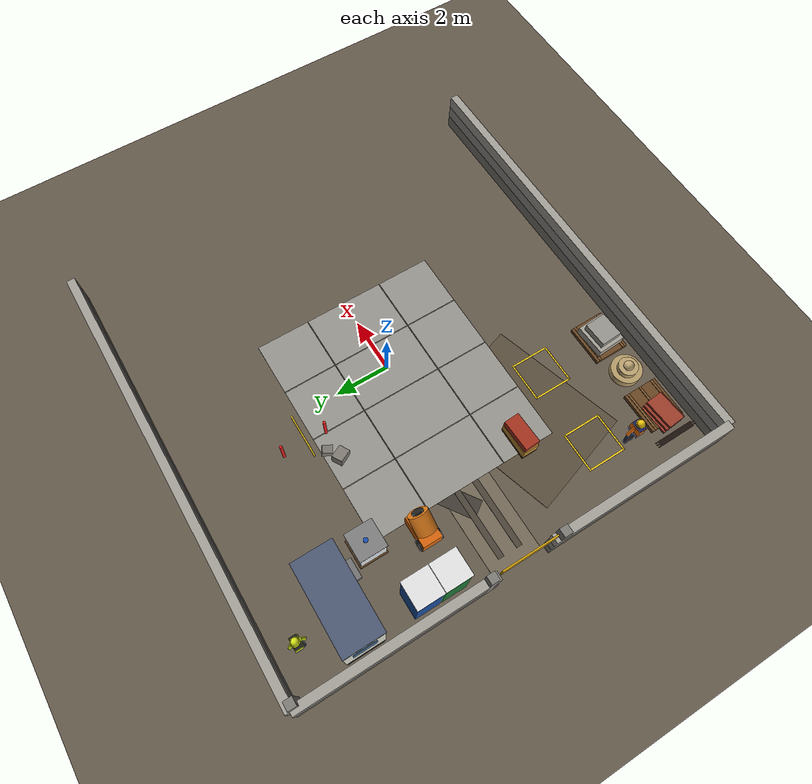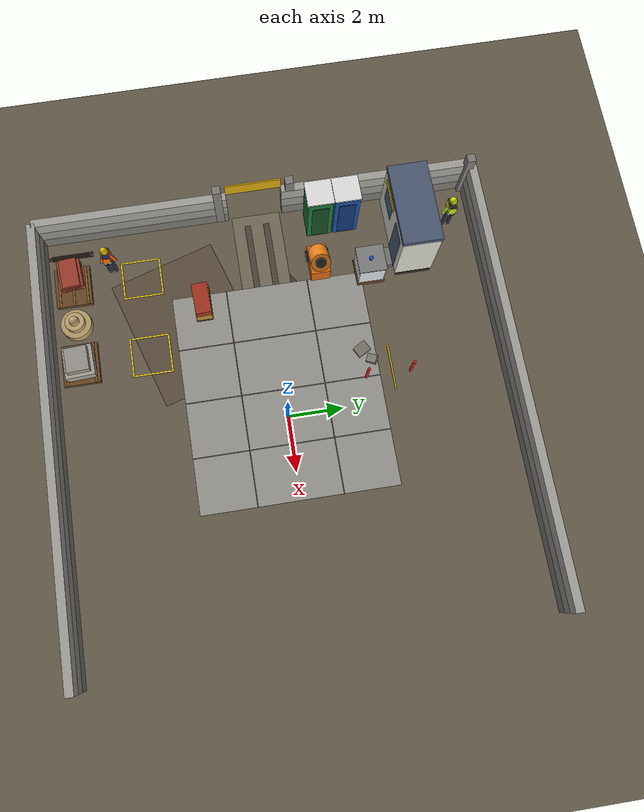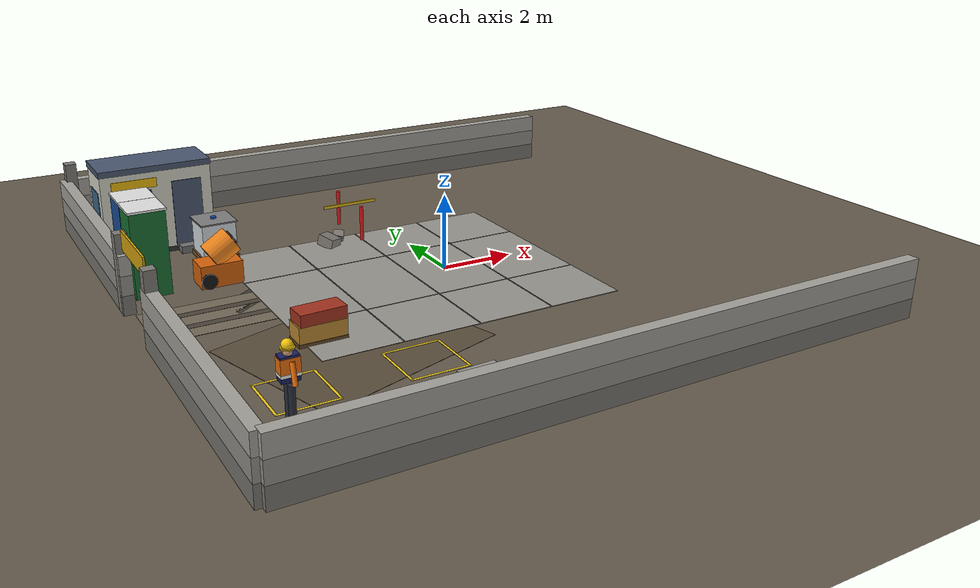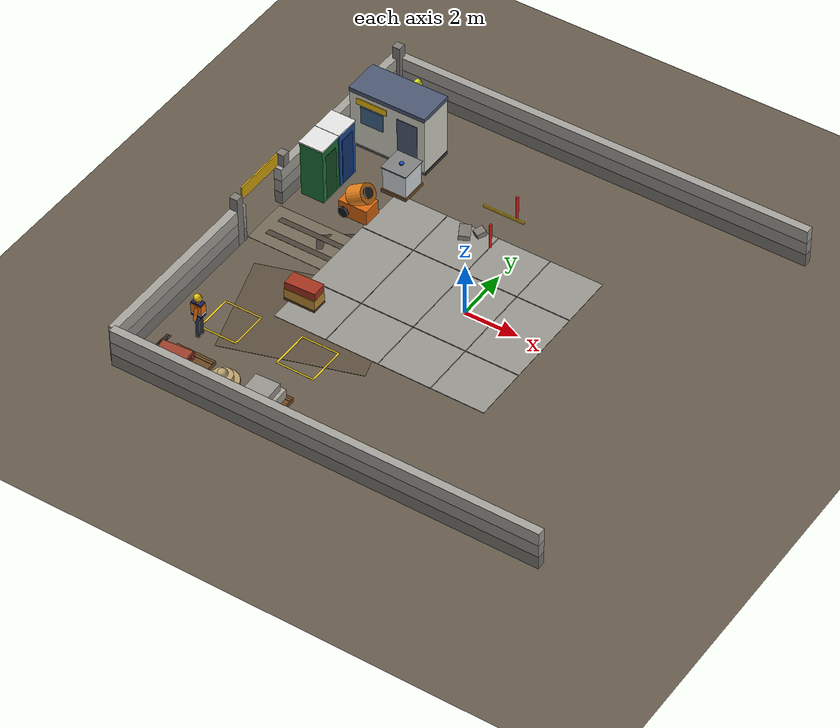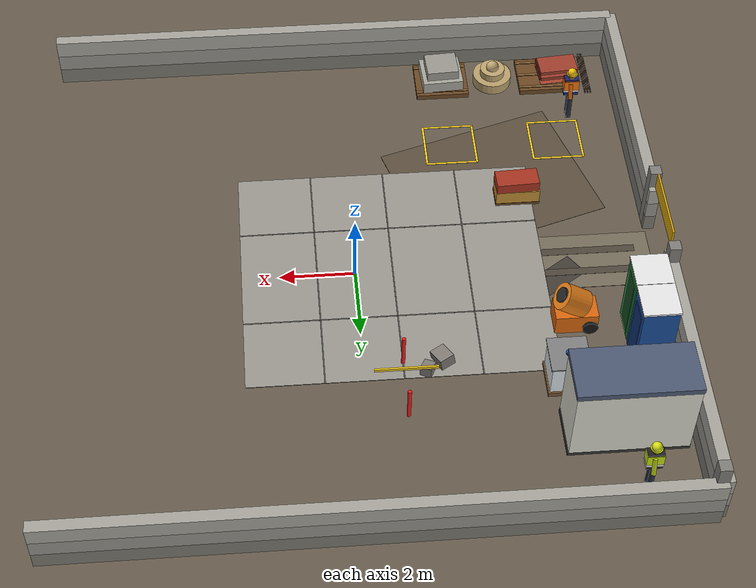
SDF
<sdf version="1.8">
 <world name="masonassist_world">
  <model name="ground_plane">
   <static>true</static>
   <link name="link">
    <collision name="collision">
     <geometry><plane><normal>0 0 1</normal><size>100 100</size></plane></geometry>
     <surface><friction><ode><mu>1.0</mu><mu2>1.0</mu2></ode></friction></surface>
    </collision>
    <visual name="visual">
     <geometry><plane><normal>0 0 1</normal><size>100 100</size></plane></geometry>
     <material><ambient>0.4 0.36 0.3 1</ambient><diffuse>0.4 0.36 0.3 1</diffuse></material>
    </visual>
   </link>
  </model>
  <model name="soil_patch_1">
   <static>true</static>
   <pose>-4 -3 0.005 0 0 0.3</pose>
   <link name="link">
    <visual name="visual">
     <geometry><box><size>5 4 0.01</size></box></geometry>
     <material><ambient>0.36 0.31 0.24 1</ambient><diffuse>0.36 0.31 0.24 1</diffuse></material>
    </visual>
   </link>
  </model>
  <model name="entrance_path">
   <static>true</static>
   <pose>-6.2 0 0.005 0 0 0</pose>
   <link name="link">
    <visual name="visual">
     <geometry><box><size>3.4 1.8 0.01</size></box></geometry>
     <material><ambient>0.46 0.42 0.35 1</ambient><diffuse>0.46 0.42 0.35 1</diffuse></material>
    </visual>
   </link>
  </model>
  <model name="stain_patch_gate">
   <static>true</static>
   <pose>-5.3 0.5 0.006 0 0 0.6</pose>
   <link name="link">
    <visual name="visual">
     <geometry><box><size>1.4 0.7 0.008</size></box></geometry>
     <material><ambient>0.26 0.24 0.21 1</ambient><diffuse>0.26 0.24 0.21 1</diffuse></material>
    </visual>
   </link>
  </model>
  <model name="concrete_slab">
   <static>true</static>
   <pose>-1 0 0.012 0 0 0</pose>
   <link name="link">
    <visual name="visual">
     <geometry><box><size>8 7 0.02</size></box></geometry>
     <material><ambient>0.6 0.59 0.56 1</ambient><diffuse>0.6 0.59 0.56 1</diffuse></material>
    </visual>
   </link>
  </model>
  <model name="slab_seams">
   <static>true</static>
   <pose>-1 0 0.0225 0 0 0</pose>
   <link name="link">
    <visual name="v1">
     <pose>-2 0 0 0 0 0</pose>
     <geometry><box><size>0.03 7 0.004</size></box></geometry>
     <material><ambient>0.38 0.37 0.35 1</ambient><diffuse>0.38 0.37 0.35 1</diffuse></material>
    </visual>
    <visual name="v2">
     <geometry><box><size>0.03 7 0.004</size></box></geometry>
     <material><ambient>0.38 0.37 0.35 1</ambient><diffuse>0.38 0.37 0.35 1</diffuse></material>
    </visual>
    <visual name="v3">
     <pose>2 0 0 0 0 0</pose>
     <geometry><box><size>0.03 7 0.004</size></box></geometry>
     <material><ambient>0.38 0.37 0.35 1</ambient><diffuse>0.38 0.37 0.35 1</diffuse></material>
    </visual>
    <visual name="h1">
     <pose>0 -1.5 0 0 0 0</pose>
     <geometry><box><size>8 0.03 0.004</size></box></geometry>
     <material><ambient>0.38 0.37 0.35 1</ambient><diffuse>0.38 0.37 0.35 1</diffuse></material>
    </visual>
    <visual name="h2">
     <pose>0 1.5 0 0 0 0</pose>
     <geometry><box><size>8 0.03 0.004</size></box></geometry>
     <material><ambient>0.38 0.37 0.35 1</ambient><diffuse>0.38 0.37 0.35 1</diffuse></material>
    </visual>
   </link>
  </model>
  <model name="wall_north">
   <static>true</static>
   <pose>0 8 0.75 0 0 0</pose>
   <link name="link">
    <collision name="collision"><geometry><box><size>16 0.3 1.5</size></box></geometry></collision>
    <visual name="base">
     <pose>0 0 -0.5 0 0 0</pose>
     <geometry><box><size>16 0.3 0.5</size></box></geometry>
     <material><ambient>0.48 0.47 0.44 1</ambient><diffuse>0.48 0.47 0.44 1</diffuse></material>
    </visual>
    <visual name="mid">
     <geometry><box><size>16 0.3 0.5</size></box></geometry>
     <material><ambient>0.58 0.57 0.55 1</ambient><diffuse>0.58 0.57 0.55 1</diffuse></material>
    </visual>
    <visual name="top">
     <pose>0 0 0.5 0 0 0</pose>
     <geometry><box><size>16 0.3 0.5</size></box></geometry>
     <material><ambient>0.65 0.64 0.61 1</ambient><diffuse>0.65 0.64 0.61 1</diffuse></material>
    </visual>
   </link>
  </model>
  <model name="wall_south">
   <static>true</static>
   <pose>0 -8 0.75 0 0 0</pose>
   <link name="link">
    <collision name="collision"><geometry><box><size>16 0.3 1.5</size></box></geometry></collision>
    <visual name="base">
     <pose>0 0 -0.5 0 0 0</pose>
     <geometry><box><size>16 0.3 0.5</size></box></geometry>
     <material><ambient>0.48 0.47 0.44 1</ambient><diffuse>0.48 0.47 0.44 1</diffuse></material>
    </visual>
    <visual name="mid">
     <geometry><box><size>16 0.3 0.5</size></box></geometry>
     <material><ambient>0.58 0.57 0.55 1</ambient><diffuse>0.58 0.57 0.55 1</diffuse></material>
    </visual>
    <visual name="top">
     <pose>0 0 0.5 0 0 0</pose>
     <geometry><box><size>16 0.3 0.5</size></box></geometry>
     <material><ambient>0.65 0.64 0.61 1</ambient><diffuse>0.65 0.64 0.61 1</diffuse></material>
    </visual>
   </link>
  </model>
  <model name="wall_west_a">
   <static>true</static>
   <pose>-8 4.5 0.75 0 0 1.5708</pose>
   <link name="link">
    <collision name="collision"><geometry><box><size>7 0.3 1.5</size></box></geometry></collision>
    <visual name="base">
     <pose>0 0 -0.5 0 0 0</pose>
     <geometry><box><size>7 0.3 0.5</size></box></geometry>
     <material><ambient>0.48 0.47 0.44 1</ambient><diffuse>0.48 0.47 0.44 1</diffuse></material>
    </visual>
    <visual name="mid">
     <geometry><box><size>7 0.3 0.5</size></box></geometry>
     <material><ambient>0.58 0.57 0.55 1</ambient><diffuse>0.58 0.57 0.55 1</diffuse></material>
    </visual>
    <visual name="top">
     <pose>0 0 0.5 0 0 0</pose>
     <geometry><box><size>7 0.3 0.5</size></box></geometry>
     <material><ambient>0.65 0.64 0.61 1</ambient><diffuse>0.65 0.64 0.61 1</diffuse></material>
    </visual>
   </link>
  </model>
  <model name="wall_west_b">
   <static>true</static>
   <pose>-8 -4.5 0.75 0 0 1.5708</pose>
   <link name="link">
    <collision name="collision"><geometry><box><size>7 0.3 1.5</size></box></geometry></collision>
    <visual name="base">
     <pose>0 0 -0.5 0 0 0</pose>
     <geometry><box><size>7 0.3 0.5</size></box></geometry>
     <material><ambient>0.48 0.47 0.44 1</ambient><diffuse>0.48 0.47 0.44 1</diffuse></material>
    </visual>
    <visual name="mid">
     <geometry><box><size>7 0.3 0.5</size></box></geometry>
     <material><ambient>0.58 0.57 0.55 1</ambient><diffuse>0.58 0.57 0.55 1</diffuse></material>
    </visual>
    <visual name="top">
     <pose>0 0 0.5 0 0 0</pose>
     <geometry><box><size>7 0.3 0.5</size></box></geometry>
     <material><ambient>0.65 0.64 0.61 1</ambient><diffuse>0.65 0.64 0.61 1</diffuse></material>
    </visual>
   </link>
  </model>
  <model name="column_nw">
   <static>true</static>
   <pose>-7.85 7.85 1.0 0 0 0</pose>
   <link name="link">
    <visual name="visual">
     <geometry><box><size>0.3 0.3 2.0</size></box></geometry>
     <material><ambient>0.5 0.49 0.47 1</ambient><diffuse>0.5 0.49 0.47 1</diffuse></material>
    </visual>
    <collision name="collision"><geometry><box><size>0.3 0.3 2.0</size></box></geometry></collision>
   </link>
  </model>
  <model name="gate_post_a">
   <static>true</static>
   <pose>-8 1.3 1.0 0 0 0</pose>
   <link name="link">
    <visual name="visual">
     <geometry><box><size>0.3 0.3 2.0</size></box></geometry>
     <material><ambient>0.5 0.49 0.47 1</ambient><diffuse>0.5 0.49 0.47 1</diffuse></material>
    </visual>
    <collision name="collision"><geometry><box><size>0.3 0.3 2.0</size></box></geometry></collision>
   </link>
  </model>
  <model name="gate_post_b">
   <static>true</static>
   <pose>-8 -1.3 1.0 0 0 0</pose>
   <link name="link">
    <visual name="visual">
     <geometry><box><size>0.3 0.3 2.0</size></box></geometry>
     <material><ambient>0.5 0.49 0.47 1</ambient><diffuse>0.5 0.49 0.47 1</diffuse></material>
    </visual>
    <collision name="collision"><geometry><box><size>0.3 0.3 2.0</size></box></geometry></collision>
   </link>
  </model>
  <model name="gate_sign">
   <static>true</static>
   <pose>-8 0 1.9 0 0 1.5708</pose>
   <link name="link">
    <visual name="visual">
     <geometry><box><size>2.0 0.05 0.5</size></box></geometry>
     <material><ambient>0.85 0.65 0.05 1</ambient><diffuse>0.85 0.65 0.05 1</diffuse></material>
    </visual>
   </link>
  </model>
  <model name="pallet_bricks">
   <static>true</static>
   <pose>-6 -7 0.1 0 0 0</pose>
   <link name="link">
    <collision name="collision"><geometry><box><size>1.5 1.3 0.15</size></box></geometry></collision>
    <visual name="visual">
     <geometry><box><size>1.5 1.3 0.15</size></box></geometry>
     <material><ambient>0.42 0.28 0.14 1</ambient><diffuse>0.42 0.28 0.14 1</diffuse></material>
    </visual>
    <visual name="slat1">
     <pose>0 -0.5 0.08 0 0 0</pose>
     <geometry><box><size>1.5 0.08 0.03</size></box></geometry>
     <material><ambient>0.5 0.35 0.18 1</ambient><diffuse>0.5 0.35 0.18 1</diffuse></material>
    </visual>
    <visual name="slat2">
     <pose>0 0 0.08 0 0 0</pose>
     <geometry><box><size>1.5 0.08 0.03</size></box></geometry>
     <material><ambient>0.5 0.35 0.18 1</ambient><diffuse>0.5 0.35 0.18 1</diffuse></material>
    </visual>
    <visual name="slat3">
     <pose>0 0.5 0.08 0 0 0</pose>
     <geometry><box><size>1.5 0.08 0.03</size></box></geometry>
     <material><ambient>0.5 0.35 0.18 1</ambient><diffuse>0.5 0.35 0.18 1</diffuse></material>
    </visual>
   </link>
  </model>
  <model name="brick_stack_1">
   <static>true</static>
   <pose>-6 -7 0.3 0 0 0.08</pose>
   <link name="link">
    <collision name="collision"><geometry><box><size>1.2 1.0 0.5</size></box></geometry></collision>
    <visual name="v_row1a">
     <pose>-0.4 -0.3 -0.17 0 0 0</pose>
     <geometry><box><size>1.1 0.24 0.1</size></box></geometry>
     <material><ambient>0.62 0.24 0.17 1</ambient><diffuse>0.62 0.24 0.17 1</diffuse></material>
    </visual>
    <visual name="v_row1b">
     <pose>-0.4 0.0 -0.17 0 0 0</pose>
     <geometry><box><size>1.1 0.24 0.1</size></box></geometry>
     <material><ambient>0.58 0.22 0.15 1</ambient><diffuse>0.58 0.22 0.15 1</diffuse></material>
    </visual>
    <visual name="v_row1c">
     <pose>-0.4 0.3 -0.17 0 0 0</pose>
     <geometry><box><size>1.1 0.24 0.1</size></box></geometry>
     <material><ambient>0.65 0.26 0.18 1</ambient><diffuse>0.65 0.26 0.18 1</diffuse></material>
    </visual>
    <visual name="v_row2a">
     <pose>-0.4 -0.15 -0.05 0 0 0</pose>
     <geometry><box><size>1.1 0.24 0.1</size></box></geometry>
     <material><ambient>0.6 0.23 0.16 1</ambient><diffuse>0.6 0.23 0.16 1</diffuse></material>
    </visual>
    <visual name="v_row2b">
     <pose>-0.4 0.15 -0.05 0 0 0</pose>
     <geometry><box><size>1.1 0.24 0.1</size></box></geometry>
     <material><ambient>0.63 0.25 0.17 1</ambient><diffuse>0.63 0.25 0.17 1</diffuse></material>
    </visual>
    <visual name="v_row3a">
     <pose>-0.4 -0.3 0.07 0 0 0</pose>
     <geometry><box><size>1.1 0.24 0.1</size></box></geometry>
     <material><ambient>0.61 0.24 0.16 1</ambient><diffuse>0.61 0.24 0.16 1</diffuse></material>
    </visual>
    <visual name="v_row3b">
     <pose>-0.4 0.0 0.07 0 0 0</pose>
     <geometry><box><size>1.1 0.24 0.1</size></box></geometry>
     <material><ambient>0.64 0.25 0.17 1</ambient><diffuse>0.64 0.25 0.17 1</diffuse></material>
    </visual>
    <visual name="v_row3c">
     <pose>-0.4 0.3 0.07 0 0 0</pose>
     <geometry><box><size>1.1 0.24 0.1</size></box></geometry>
     <material><ambient>0.6 0.23 0.16 1</ambient><diffuse>0.6 0.23 0.16 1</diffuse></material>
    </visual>
    <visual name="v_row4">
     <pose>-0.4 0.0 0.19 0 0 0</pose>
     <geometry><box><size>1.1 0.64 0.1</size></box></geometry>
     <material><ambient>0.62 0.24 0.17 1</ambient><diffuse>0.62 0.24 0.17 1</diffuse></material>
    </visual>
   </link>
  </model>
  <model name="pallet_blocks">
   <static>true</static>
   <pose>-3 -7 0.1 0 0 0</pose>
   <link name="link">
    <collision name="collision"><geometry><box><size>1.5 1.3 0.15</size></box></geometry></collision>
    <visual name="visual">
     <geometry><box><size>1.5 1.3 0.15</size></box></geometry>
     <material><ambient>0.42 0.28 0.14 1</ambient><diffuse>0.42 0.28 0.14 1</diffuse></material>
    </visual>
    <visual name="slat1">
     <pose>0 -0.5 0.08 0 0 0</pose>
     <geometry><box><size>1.5 0.08 0.03</size></box></geometry>
     <material><ambient>0.5 0.35 0.18 1</ambient><diffuse>0.5 0.35 0.18 1</diffuse></material>
    </visual>
    <visual name="slat2">
     <pose>0 0.5 0.08 0 0 0</pose>
     <geometry><box><size>1.5 0.08 0.03</size></box></geometry>
     <material><ambient>0.5 0.35 0.18 1</ambient><diffuse>0.5 0.35 0.18 1</diffuse></material>
    </visual>
   </link>
  </model>
  <model name="block_stack_2">
   <static>true</static>
   <pose>-3 -7 0.52 0 0 0.05</pose>
   <link name="link">
    <collision name="collision"><geometry><box><size>1.2 1.1 0.7</size></box></geometry></collision>
    <visual name="v_a">
     <pose>0 0 -0.17 0 0 0</pose>
     <geometry><box><size>1.15 1.05 0.35</size></box></geometry>
     <material><ambient>0.65 0.64 0.6 1</ambient><diffuse>0.65 0.64 0.6 1</diffuse></material>
    </visual>
    <visual name="v_b">
     <pose>0 0 0.15 0 0 0</pose>
     <geometry><box><size>0.9 0.8 0.28</size></box></geometry>
     <material><ambient>0.6 0.59 0.56 1</ambient><diffuse>0.6 0.59 0.56 1</diffuse></material>
    </visual>
   </link>
  </model>
  <model name="rebar_bundle">
   <static>true</static>
   <pose>-7.2 -7 0.15 1.5708 0 0</pose>
   <link name="link">
    <collision name="collision"><geometry><box><size>0.4 1.6 0.3</size></box></geometry></collision>
    <visual name="r1">
     <pose>-0.08 0 -0.08 0 0 0</pose>
     <geometry><cylinder><radius>0.018</radius><length>1.5</length></cylinder></geometry>
     <material><ambient>0.4 0.32 0.28 1</ambient><diffuse>0.4 0.32 0.28 1</diffuse></material>
    </visual>
    <visual name="r2">
     <pose>0.0 0 -0.08 0 0 0</pose>
     <geometry><cylinder><radius>0.018</radius><length>1.5</length></cylinder></geometry>
     <material><ambient>0.42 0.34 0.3 1</ambient><diffuse>0.42 0.34 0.3 1</diffuse></material>
    </visual>
    <visual name="r3">
     <pose>0.08 0 -0.08 0 0 0</pose>
     <geometry><cylinder><radius>0.018</radius><length>1.5</length></cylinder></geometry>
     <material><ambient>0.4 0.32 0.28 1</ambient><diffuse>0.4 0.32 0.28 1</diffuse></material>
    </visual>
    <visual name="r4">
     <pose>-0.04 0 0.05 0 0 0</pose>
     <geometry><cylinder><radius>0.018</radius><length>1.5</length></cylinder></geometry>
     <material><ambient>0.41 0.33 0.29 1</ambient><diffuse>0.41 0.33 0.29 1</diffuse></material>
    </visual>
    <visual name="r5">
     <pose>0.04 0 0.05 0 0 0</pose>
     <geometry><cylinder><radius>0.018</radius><length>1.5</length></cylinder></geometry>
     <material><ambient>0.4 0.32 0.28 1</ambient><diffuse>0.4 0.32 0.28 1</diffuse></material>
    </visual>
   </link>
  </model>
  <model name="sand_pile">
   <static>true</static>
   <pose>-4.5 -7 0 0 0 0.2</pose>
   <link name="link">
    <collision name="collision"><geometry><box><size>1.2 1.2 0.7</size></box></geometry></collision>
    <visual name="base">
     <pose>0 0 0.15 0 0 0</pose>
     <geometry><cylinder><radius>0.55</radius><length>0.3</length></cylinder></geometry>
     <material><ambient>0.72 0.62 0.42 1</ambient><diffuse>0.72 0.62 0.42 1</diffuse></material>
    </visual>
    <visual name="mid">
     <pose>0 0 0.38 0 0 0</pose>
     <geometry><cylinder><radius>0.35</radius><length>0.28</length></cylinder></geometry>
     <material><ambient>0.74 0.64 0.44 1</ambient><diffuse>0.74 0.64 0.44 1</diffuse></material>
    </visual>
    <visual name="top">
     <pose>0 0 0.56 0 0 0</pose>
     <geometry><sphere><radius>0.18</radius></sphere></geometry>
     <material><ambient>0.76 0.66 0.46 1</ambient><diffuse>0.76 0.66 0.46 1</diffuse></material>
    </visual>
   </link>
  </model>
  <model name="safety_post_a">
   <static>true</static>
   <pose>-1 3 0.5 0 0 0</pose>
   <link name="link">
    <visual name="visual">
     <geometry><cylinder><radius>0.05</radius><length>1.0</length></cylinder></geometry>
     <material><ambient>0.9 0.1 0.1 1</ambient><diffuse>0.9 0.1 0.1 1</diffuse></material>
    </visual>
    <collision name="collision">
     <geometry><cylinder><radius>0.05</radius><length>1.0</length></cylinder></geometry>
    </collision>
   </link>
  </model>
  <model name="safety_post_b">
   <static>true</static>
   <pose>-1 4.6 0.5 0 0 0</pose>
   <link name="link">
    <visual name="visual">
     <geometry><cylinder><radius>0.05</radius><length>1.0</length></cylinder></geometry>
     <material><ambient>0.9 0.1 0.1 1</ambient><diffuse>0.9 0.1 0.1 1</diffuse></material>
    </visual>
    <collision name="collision">
     <geometry><cylinder><radius>0.05</radius><length>1.0</length></cylinder></geometry>
    </collision>
   </link>
  </model>
  <model name="safety_tape">
   <static>true</static>
   <pose>-1 3.8 0.85 0 0 0</pose>
   <link name="link">
    <visual name="visual">
     <geometry><box><size>1.6 0.05 0.08</size></box></geometry>
     <material><ambient>0.9 0.75 0.1 1</ambient><diffuse>0.9 0.75 0.1 1</diffuse></material>
    </visual>
   </link>
  </model>
  <model name="rubble_1">
   <static>true</static>
   <pose>-2 3 0.15 0.2 0.1 0.5</pose>
   <link name="link">
    <collision name="collision"><geometry><box><size>0.4 0.5 0.3</size></box></geometry></collision>
    <visual name="visual">
     <geometry><box><size>0.4 0.5 0.3</size></box></geometry>
     <material><ambient>0.5 0.48 0.45 1</ambient><diffuse>0.5 0.48 0.45 1</diffuse></material>
    </visual>
   </link>
  </model>
  <model name="rubble_2">
   <static>true</static>
   <pose>-1.6 3.3 0.12 0.1 -0.2 1.1</pose>
   <link name="link">
    <collision name="collision"><geometry><box><size>0.35 0.3 0.25</size></box></geometry></collision>
    <visual name="visual">
     <geometry><box><size>0.35 0.3 0.25</size></box></geometry>
     <material><ambient>0.5 0.48 0.45 1</ambient><diffuse>0.5 0.48 0.45 1</diffuse></material>
    </visual>
   </link>
  </model>
  <model name="site_office">
   <static>true</static>
   <pose>-6.2 5.4 0 0 0 0</pose>
   <link name="link">
    <collision name="collision">
     <pose>0 0 1.25 0 0 0</pose>
     <geometry><box><size>3.0 1.4 2.5</size></box></geometry>
    </collision>
    <collision name="steps_col">
     <pose>0.8 -0.85 0.1 0 0 0</pose>
     <geometry><box><size>0.7 0.3 0.2</size></box></geometry>
    </collision>
    <visual name="skid">
     <pose>0 0 0.075 0 0 0</pose>
     <geometry><box><size>3.0 1.3 0.15</size></box></geometry>
     <material><ambient>0.2 0.2 0.2 1</ambient><diffuse>0.2 0.2 0.2 1</diffuse></material>
    </visual>
    <visual name="body">
     <pose>0 0 1.25 0 0 0</pose>
     <geometry><box><size>2.96 1.36 2.2</size></box></geometry>
     <material><ambient>0.85 0.85 0.8 1</ambient><diffuse>0.85 0.85 0.8 1</diffuse></material>
    </visual>
    <visual name="roof">
     <pose>0 0 2.42 0 0 0</pose>
     <geometry><box><size>3.0 1.4 0.16</size></box></geometry>
     <material><ambient>0.3 0.35 0.45 1</ambient><diffuse>0.3 0.35 0.45 1</diffuse></material>
    </visual>
    <visual name="door">
     <pose>0.8 -0.69 1.05 0 0 0</pose>
     <geometry><box><size>0.8 0.02 1.9</size></box></geometry>
     <material><ambient>0.3 0.35 0.45 1</ambient><diffuse>0.3 0.35 0.45 1</diffuse></material>
    </visual>
    <visual name="window_1">
     <pose>-0.6 -0.69 1.5 0 0 0</pose>
     <geometry><box><size>0.9 0.02 0.7</size></box></geometry>
     <material>
      <ambient>0.25 0.4 0.55 1</ambient>
      <diffuse>0.25 0.4 0.55 1</diffuse>
      <specular>0.6 0.6 0.6 1</specular>
     </material>
    </visual>
    <visual name="window_2">
     <pose>-1.49 0 1.5 0 0 0</pose>
     <geometry><box><size>0.02 0.8 0.7</size></box></geometry>
     <material>
      <ambient>0.25 0.4 0.55 1</ambient>
      <diffuse>0.25 0.4 0.55 1</diffuse>
      <specular>0.6 0.6 0.6 1</specular>
     </material>
    </visual>
    <visual name="sign">
     <pose>-0.6 -0.70 2.05 0 0 0</pose>
     <geometry><box><size>1.2 0.02 0.25</size></box></geometry>
     <material><ambient>0.95 0.75 0.05 1</ambient><diffuse>0.95 0.75 0.05 1</diffuse></material>
    </visual>
    <visual name="steps">
     <pose>0.8 -0.85 0.1 0 0 0</pose>
     <geometry><box><size>0.7 0.3 0.2</size></box></geometry>
     <material><ambient>0.45 0.45 0.45 1</ambient><diffuse>0.45 0.45 0.45 1</diffuse></material>
    </visual>
   </link>
  </model>
  <model name="portable_toilets">
   <static>true</static>
   <pose>-7.2 2.72 0 0 0 0</pose>
   <link name="link">
    <collision name="collision">
     <pose>0 0 1.1 0 0 0</pose>
     <geometry><box><size>0.9 1.9 2.2</size></box></geometry>
    </collision>
    <visual name="unit_1">
     <pose>0 -0.48 1.1 0 0 0</pose>
     <geometry><box><size>0.9 0.9 2.2</size></box></geometry>
     <material><ambient>0.1 0.45 0.2 1</ambient><diffuse>0.1 0.45 0.2 1</diffuse></material>
    </visual>
    <visual name="unit_2">
     <pose>0 0.48 1.1 0 0 0</pose>
     <geometry><box><size>0.9 0.9 2.2</size></box></geometry>
     <material><ambient>0.1 0.3 0.6 1</ambient><diffuse>0.1 0.3 0.6 1</diffuse></material>
    </visual>
    <visual name="roof_1">
     <pose>0 -0.48 2.23 0 0 0</pose>
     <geometry><box><size>0.95 0.95 0.06</size></box></geometry>
     <material><ambient>0.9 0.9 0.9 1</ambient><diffuse>0.9 0.9 0.9 1</diffuse></material>
    </visual>
    <visual name="roof_2">
     <pose>0 0.48 2.23 0 0 0</pose>
     <geometry><box><size>0.95 0.95 0.06</size></box></geometry>
     <material><ambient>0.9 0.9 0.9 1</ambient><diffuse>0.9 0.9 0.9 1</diffuse></material>
    </visual>
    <visual name="door_1">
     <pose>0.46 -0.48 1.0 0 0 0</pose>
     <geometry><box><size>0.02 0.6 1.8</size></box></geometry>
     <material><ambient>0.08 0.3 0.12 1</ambient><diffuse>0.08 0.3 0.12 1</diffuse></material>
    </visual>
    <visual name="door_2">
     <pose>0.46 0.48 1.0 0 0 0</pose>
     <geometry><box><size>0.02 0.6 1.8</size></box></geometry>
     <material><ambient>0.06 0.2 0.45 1</ambient><diffuse>0.06 0.2 0.45 1</diffuse></material>
    </visual>
   </link>
  </model>
  <model name="concrete_mixer">
   <static>true</static>
   <pose>-5.5 2.0 0 0 0 0</pose>
   <link name="link">
    <collision name="collision">
     <pose>0 0 0.65 0 0 0</pose>
     <geometry><box><size>1.2 0.8 1.3</size></box></geometry>
    </collision>
    <visual name="frame">
     <pose>0 0 0.3 0 0 0</pose>
     <geometry><box><size>1.1 0.7 0.6</size></box></geometry>
     <material><ambient>0.85 0.4 0.05 1</ambient><diffuse>0.85 0.4 0.05 1</diffuse></material>
    </visual>
    <visual name="drum">
     <pose>0.1 0 0.9 0 1.0 0</pose>
     <geometry><cylinder><radius>0.36</radius><length>0.7</length></cylinder></geometry>
     <material><ambient>0.9 0.5 0.1 1</ambient><diffuse>0.9 0.5 0.1 1</diffuse></material>
    </visual>
    <visual name="drum_mouth">
     <pose>0.38 0 1.12 0 1.0 0</pose>
     <geometry><cylinder><radius>0.2</radius><length>0.1</length></cylinder></geometry>
     <material><ambient>0.15 0.15 0.15 1</ambient><diffuse>0.15 0.15 0.15 1</diffuse></material>
    </visual>
    <visual name="wheel_l">
     <pose>-0.35 0.38 0.2 1.5708 0 0</pose>
     <geometry><cylinder><radius>0.2</radius><length>0.08</length></cylinder></geometry>
     <material><ambient>0.08 0.08 0.08 1</ambient><diffuse>0.08 0.08 0.08 1</diffuse></material>
    </visual>
    <visual name="wheel_r">
     <pose>-0.35 -0.38 0.2 1.5708 0 0</pose>
     <geometry><cylinder><radius>0.2</radius><length>0.08</length></cylinder></geometry>
     <material><ambient>0.08 0.08 0.08 1</ambient><diffuse>0.08 0.08 0.08 1</diffuse></material>
    </visual>
   </link>
  </model>
  <model name="water_tank">
   <static>true</static>
   <pose>-5.0 3.8 0 0 0 0</pose>
   <link name="link">
    <collision name="collision">
     <pose>0 0 0.55 0 0 0</pose>
     <geometry><box><size>1.0 1.0 1.1</size></box></geometry>
    </collision>
    <visual name="pallet">
     <pose>0 0 0.07 0 0 0</pose>
     <geometry><box><size>1.0 1.0 0.14</size></box></geometry>
     <material><ambient>0.45 0.32 0.18 1</ambient><diffuse>0.45 0.32 0.18 1</diffuse></material>
    </visual>
    <visual name="tank">
     <pose>0 0 0.6 0 0 0</pose>
     <geometry><box><size>0.92 0.92 0.9</size></box></geometry>
     <material><ambient>0.85 0.88 0.9 1</ambient><diffuse>0.85 0.88 0.9 1</diffuse></material>
    </visual>
    <visual name="cage_top">
     <pose>0 0 1.07 0 0 0</pose>
     <geometry><box><size>1.0 1.0 0.04</size></box></geometry>
     <material><ambient>0.5 0.5 0.5 1</ambient><diffuse>0.5 0.5 0.5 1</diffuse></material>
    </visual>
    <visual name="cap">
     <pose>0 0 1.11 0 0 0</pose>
     <geometry><cylinder><radius>0.08</radius><length>0.05</length></cylinder></geometry>
     <material><ambient>0.1 0.3 0.7 1</ambient><diffuse>0.1 0.3 0.7 1</diffuse></material>
    </visual>
   </link>
  </model>
  <model name="formwork_stack">
   <static>true</static>
   <pose>-4.6 -2.4 0 0 0 0</pose>
   <link name="link">
    <collision name="collision">
     <pose>0 0 0.4 0 0 0</pose>
     <geometry><box><size>1.2 0.6 0.8</size></box></geometry>
    </collision>
    <visual name="bearers">
     <pose>0 0 0.05 0 0 0</pose>
     <geometry><box><size>1.2 0.6 0.1</size></box></geometry>
     <material><ambient>0.4 0.28 0.15 1</ambient><diffuse>0.4 0.28 0.15 1</diffuse></material>
    </visual>
    <visual name="panels_low">
     <pose>0 0 0.3 0 0 0</pose>
     <geometry><box><size>1.18 0.58 0.4</size></box></geometry>
     <material><ambient>0.75 0.55 0.2 1</ambient><diffuse>0.75 0.55 0.2 1</diffuse></material>
    </visual>
    <visual name="panels_high">
     <pose>0.02 0 0.65 0 0 0.04</pose>
     <geometry><box><size>1.15 0.56 0.3</size></box></geometry>
     <material><ambient>0.65 0.2 0.12 1</ambient><diffuse>0.65 0.2 0.12 1</diffuse></material>
    </visual>
   </link>
  </model>
  <model name="bay_brick_pickup">
   <static>true</static>
   <pose>-6.0 -4.5 0.013 0 0 0</pose>
   <link name="link">
    <visual name="n">
     <pose>0 0.7 0 0 0 0</pose>
     <geometry><box><size>1.46 0.06 0.004</size></box></geometry>
     <material><ambient>0.95 0.8 0.1 1</ambient><diffuse>0.95 0.8 0.1 1</diffuse></material>
    </visual>
    <visual name="s">
     <pose>0 -0.7 0 0 0 0</pose>
     <geometry><box><size>1.46 0.06 0.004</size></box></geometry>
     <material><ambient>0.95 0.8 0.1 1</ambient><diffuse>0.95 0.8 0.1 1</diffuse></material>
    </visual>
    <visual name="e">
     <pose>0.7 0 0 0 0 0</pose>
     <geometry><box><size>0.06 1.46 0.004</size></box></geometry>
     <material><ambient>0.95 0.8 0.1 1</ambient><diffuse>0.95 0.8 0.1 1</diffuse></material>
    </visual>
    <visual name="w">
     <pose>-0.7 0 0 0 0 0</pose>
     <geometry><box><size>0.06 1.46 0.004</size></box></geometry>
     <material><ambient>0.95 0.8 0.1 1</ambient><diffuse>0.95 0.8 0.1 1</diffuse></material>
    </visual>
   </link>
  </model>
  <model name="bay_block_pickup">
   <static>true</static>
   <pose>-3.0 -4.5 0.013 0 0 0</pose>
   <link name="link">
    <visual name="n">
     <pose>0 0.7 0 0 0 0</pose>
     <geometry><box><size>1.46 0.06 0.004</size></box></geometry>
     <material><ambient>0.95 0.8 0.1 1</ambient><diffuse>0.95 0.8 0.1 1</diffuse></material>
    </visual>
    <visual name="s">
     <pose>0 -0.7 0 0 0 0</pose>
     <geometry><box><size>1.46 0.06 0.004</size></box></geometry>
     <material><ambient>0.95 0.8 0.1 1</ambient><diffuse>0.95 0.8 0.1 1</diffuse></material>
    </visual>
    <visual name="e">
     <pose>0.7 0 0 0 0 0</pose>
     <geometry><box><size>0.06 1.46 0.004</size></box></geometry>
     <material><ambient>0.95 0.8 0.1 1</ambient><diffuse>0.95 0.8 0.1 1</diffuse></material>
    </visual>
    <visual name="w">
     <pose>-0.7 0 0 0 0 0</pose>
     <geometry><box><size>0.06 1.46 0.004</size></box></geometry>
     <material><ambient>0.95 0.8 0.1 1</ambient><diffuse>0.95 0.8 0.1 1</diffuse></material>
    </visual>
   </link>
  </model>
  <model name="tyre_tracks">
   <static>true</static>
   <pose>-5.75 0 0.0125 0 0 0</pose>
   <link name="link">
    <visual name="t1">
     <pose>0 0.35 0 0 0 0</pose>
     <geometry><box><size>3.5 0.22 0.004</size></box></geometry>
     <material><ambient>0.3 0.27 0.23 1</ambient><diffuse>0.3 0.27 0.23 1</diffuse></material>
    </visual>
    <visual name="t2">
     <pose>0 -0.35 0 0 0 0</pose>
     <geometry><box><size>3.5 0.22 0.004</size></box></geometry>
     <material><ambient>0.3 0.27 0.23 1</ambient><diffuse>0.3 0.27 0.23 1</diffuse></material>
    </visual>
   </link>
  </model>
  <model name="worker_1">
   <pose>-6.5 -5.5 0 0 0 0</pose>
   <link name="link">
    <collision name="collision">
     <pose>0 0 0.9 0 0 0</pose>
     <geometry><box><size>0.5 0.35 1.8</size></box></geometry>
    </collision>
    <visual name="helmet_dome">
     <pose>0 0 1.62 0 0 0</pose>
     <geometry><sphere><radius>0.125</radius></sphere></geometry>
     <material><ambient>0.95 0.78 0.05 1</ambient><diffuse>0.95 0.78 0.05 1</diffuse></material>
    </visual>
    <visual name="helmet_brim">
     <pose>0 0 1.56 0 0 0</pose>
     <geometry><cylinder><radius>0.15</radius><length>0.03</length></cylinder></geometry>
     <material><ambient>0.85 0.68 0.03 1</ambient><diffuse>0.85 0.68 0.03 1</diffuse></material>
    </visual>
    <visual name="head">
     <pose>0 0 1.47 0 0 0</pose>
     <geometry><sphere><radius>0.1</radius></sphere></geometry>
     <material><ambient>0.76 0.57 0.44 1</ambient><diffuse>0.76 0.57 0.44 1</diffuse></material>
    </visual>
    <visual name="torso">
     <pose>0 0 1.15 0 0 0</pose>
     <geometry><box><size>0.4 0.24 0.55</size></box></geometry>
     <material><ambient>0.1 0.13 0.4 1</ambient><diffuse>0.1 0.13 0.4 1</diffuse></material>
    </visual>
    <visual name="vest">
     <pose>0 0 1.18 0 0 0</pose>
     <geometry><box><size>0.42 0.26 0.4</size></box></geometry>
     <material><ambient>0.95 0.45 0.05 1</ambient><diffuse>0.95 0.45 0.05 1</diffuse></material>
    </visual>
    <visual name="vest_stripe">
     <pose>0 0 1.02 0 0 0</pose>
     <geometry><box><size>0.43 0.27 0.07</size></box></geometry>
     <material><ambient>0.95 0.95 0.9 1</ambient><diffuse>0.95 0.95 0.9 1</diffuse></material>
    </visual>
    <visual name="arm_l">
     <pose>0.03 0.19 1.08 0.25 0 0</pose>
     <geometry><cylinder><radius>0.055</radius><length>0.48</length></cylinder></geometry>
     <material><ambient>0.95 0.45 0.05 1</ambient><diffuse>0.95 0.45 0.05 1</diffuse></material>
    </visual>
    <visual name="arm_r">
     <pose>0.03 -0.19 1.08 -0.25 0 0</pose>
     <geometry><cylinder><radius>0.055</radius><length>0.48</length></cylinder></geometry>
     <material><ambient>0.95 0.45 0.05 1</ambient><diffuse>0.95 0.45 0.05 1</diffuse></material>
    </visual>
    <visual name="leg_l">
     <pose>0 0.1 0.42 0 0 0</pose>
     <geometry><cylinder><radius>0.075</radius><length>0.78</length></cylinder></geometry>
     <material><ambient>0.15 0.17 0.22 1</ambient><diffuse>0.15 0.17 0.22 1</diffuse></material>
    </visual>
    <visual name="leg_r">
     <pose>0 -0.1 0.42 0 0 0</pose>
     <geometry><cylinder><radius>0.075</radius><length>0.78</length></cylinder></geometry>
     <material><ambient>0.15 0.17 0.22 1</ambient><diffuse>0.15 0.17 0.22 1</diffuse></material>
    </visual>
    <visual name="boot_l">
     <pose>0 0.1 0.04 0 0 0</pose>
     <geometry><box><size>0.14 0.1 0.08</size></box></geometry>
     <material><ambient>0.08 0.08 0.08 1</ambient><diffuse>0.08 0.08 0.08 1</diffuse></material>
    </visual>
    <visual name="boot_r">
     <pose>0 -0.1 0.04 0 0 0</pose>
     <geometry><box><size>0.14 0.1 0.08</size></box></geometry>
     <material><ambient>0.08 0.08 0.08 1</ambient><diffuse>0.08 0.08 0.08 1</diffuse></material>
    </visual>
   </link>
  </model>
  <model name="worker_2">
   <pose>-6.5 7.0 0 0 0 0</pose>
   <link name="link">
    <collision name="collision">
     <pose>0 0 0.9 0 0 0</pose>
     <geometry><box><size>0.5 0.35 1.8</size></box></geometry>
    </collision>
    <visual name="helmet_dome">
     <pose>0 0 1.62 0 0 0</pose>
     <geometry><sphere><radius>0.125</radius></sphere></geometry>
     <material><ambient>0.85 0.9 0.1 1</ambient><diffuse>0.85 0.9 0.1 1</diffuse></material>
    </visual>
    <visual name="helmet_brim">
     <pose>0 0 1.56 0 0 0</pose>
     <geometry><cylinder><radius>0.15</radius><length>0.03</length></cylinder></geometry>
     <material><ambient>0.75 0.8 0.05 1</ambient><diffuse>0.75 0.8 0.05 1</diffuse></material>
    </visual>
    <visual name="head">
     <pose>0 0 1.47 0 0 0</pose>
     <geometry><sphere><radius>0.1</radius></sphere></geometry>
     <material><ambient>0.7 0.52 0.4 1</ambient><diffuse>0.7 0.52 0.4 1</diffuse></material>
    </visual>
    <visual name="torso">
     <pose>0 0 1.15 0 0 0</pose>
     <geometry><box><size>0.4 0.24 0.55</size></box></geometry>
     <material><ambient>0.12 0.12 0.14 1</ambient><diffuse>0.12 0.12 0.14 1</diffuse></material>
    </visual>
    <visual name="vest">
     <pose>0 0 1.18 0 0 0</pose>
     <geometry><box><size>0.42 0.26 0.4</size></box></geometry>
     <material><ambient>0.78 0.88 0.08 1</ambient><diffuse>0.78 0.88 0.08 1</diffuse></material>
    </visual>
    <visual name="vest_stripe">
     <pose>0 0 1.02 0 0 0</pose>
     <geometry><box><size>0.43 0.27 0.07</size></box></geometry>
     <material><ambient>0.95 0.95 0.9 1</ambient><diffuse>0.95 0.95 0.9 1</diffuse></material>
    </visual>
    <visual name="arm_l">
     <pose>0.03 0.19 1.08 0.25 0 0</pose>
     <geometry><cylinder><radius>0.055</radius><length>0.48</length></cylinder></geometry>
     <material><ambient>0.78 0.88 0.08 1</ambient><diffuse>0.78 0.88 0.08 1</diffuse></material>
    </visual>
    <visual name="arm_r">
     <pose>0.03 -0.19 1.08 -0.25 0 0</pose>
     <geometry><cylinder><radius>0.055</radius><length>0.48</length></cylinder></geometry>
     <material><ambient>0.78 0.88 0.08 1</ambient><diffuse>0.78 0.88 0.08 1</diffuse></material>
    </visual>
    <visual name="leg_l">
     <pose>0 0.1 0.42 0 0 0</pose>
     <geometry><cylinder><radius>0.075</radius><length>0.78</length></cylinder></geometry>
     <material><ambient>0.15 0.17 0.22 1</ambient><diffuse>0.15 0.17 0.22 1</diffuse></material>
    </visual>
    <visual name="leg_r">
     <pose>0 -0.1 0.42 0 0 0</pose>
     <geometry><cylinder><radius>0.075</radius><length>0.78</length></cylinder></geometry>
     <material><ambient>0.15 0.17 0.22 1</ambient><diffuse>0.15 0.17 0.22 1</diffuse></material>
    </visual>
    <visual name="boot_l">
     <pose>0 0.1 0.04 0 0 0</pose>
     <geometry><box><size>0.14 0.1 0.08</size></box></geometry>
     <material><ambient>0.08 0.08 0.08 1</ambient><diffuse>0.08 0.08 0.08 1</diffuse></material>
    </visual>
    <visual name="boot_r">
     <pose>0 -0.1 0.04 0 0 0</pose>
     <geometry><box><size>0.14 0.1 0.08</size></box></geometry>
     <material><ambient>0.08 0.08 0.08 1</ambient><diffuse>0.08 0.08 0.08 1</diffuse></material>
    </visual>
   </link>
  </model>
 </world>
</sdf>
